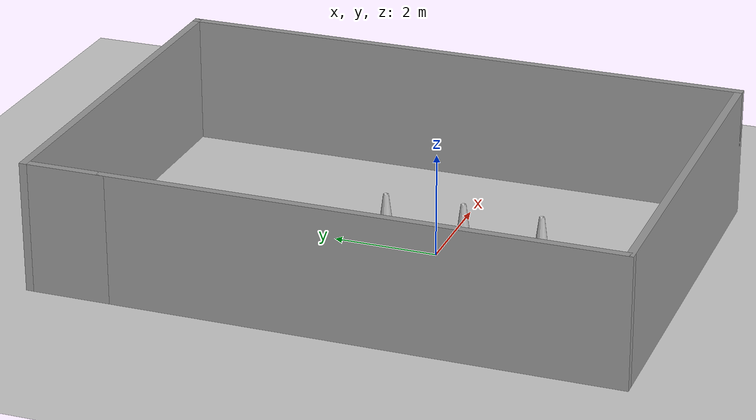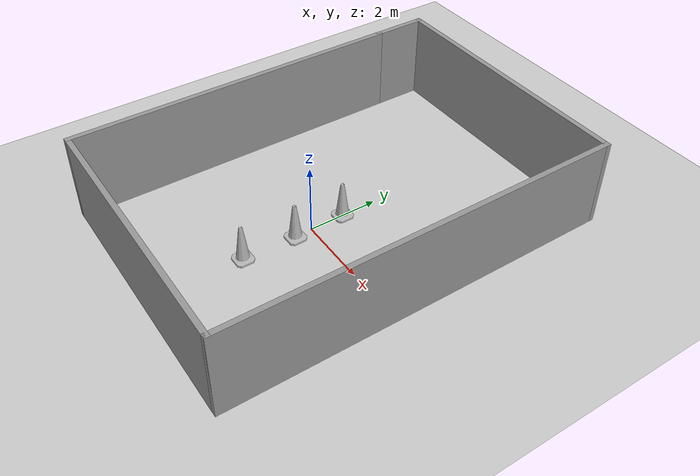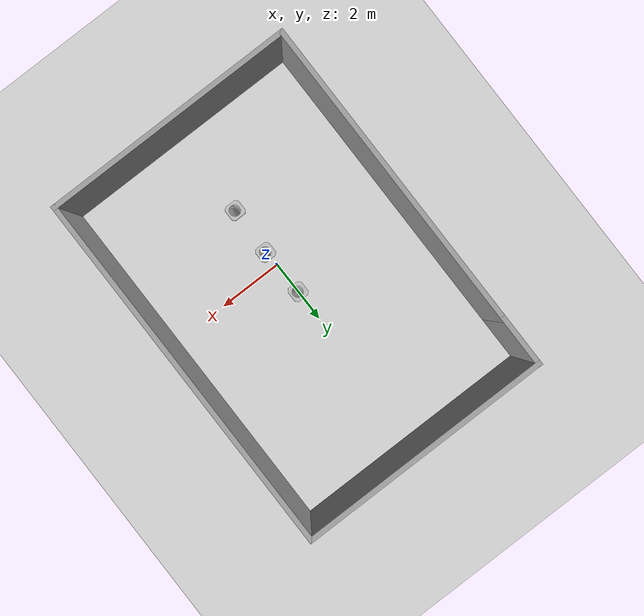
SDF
<sdf version="1.6">
 <world name="default">
  <light name="sun" type="directional">
   <pose>0 0 10 0 -0 0</pose>
   <diffuse>0.8 0.8 0.8 1</diffuse>
   <specular>0.1 0.1 0.1 1</specular>
   <attenuation>
    <range>1000</range>
    <constant>0.9</constant>
    <linear>0.01</linear>
    <quadratic>0.001</quadratic>
   </attenuation>
   <direction>-0.5 0.5 -1</direction>
  </light>
  <model name="ground_plane">
   <static>1</static>
   <link name="link">
    <collision name="collision">
     <geometry><plane><normal>0 0 1</normal><size>100 100</size></plane></geometry>
     <surface><friction><ode><mu>100</mu><mu2>50</mu2></ode></friction></surface>
    </collision>
    <visual name="visual">
     <cast_shadows>0</cast_shadows>
     <geometry><plane><normal>0 0 1</normal><size>100 100</size></plane></geometry>
     <material>
      <script><uri>file://media/materials/scripts/gazebo.material</uri><name>Gazebo/Grey</name></script>
     </material>
    </visual>
   </link>
  </model>
  <gravity>0 0 -9.8</gravity>
  <magnetic_field>6e-06 2.3e-05 -4.2e-05</magnetic_field>
  <atmosphere type="adiabatic"/>
  <physics name="default_physics" default="0" type="ode">
   <max_step_size>0.001</max_step_size>
   <real_time_factor>1</real_time_factor>
   <real_time_update_rate>1000</real_time_update_rate>
  </physics>
  <scene><ambient>0.4 0.4 0.4 1</ambient><background>0.7 0.7 0.7 1</background><shadows>1</shadows></scene>
  <spherical_coordinates>
   <surface_model>EARTH_WGS84</surface_model>
   <latitude_deg>0</latitude_deg>
   <longitude_deg>0</longitude_deg>
   <elevation>0</elevation>
   <heading_deg>0</heading_deg>
  </spherical_coordinates>
  <model name="Construction Cone">
   <static>1</static>
   <link name="link">
    <collision name="collision">
     <geometry>
      <mesh><scale>10 10 10</scale><uri>model://construction_cone/meshes/construction_cone.dae</uri></mesh>
     </geometry>
    </collision>
    <visual name="visual">
     <geometry>
      <mesh><scale>10 10 10</scale><uri>model://construction_cone/meshes/construction_cone.dae</uri></mesh>
     </geometry>
    </visual>
   </link>
   <pose>-0.002 0.988315 0 0 -0 0</pose>
  </model>
  <model name="Construction Cone_0">
   <static>1</static>
   <link name="link">
    <collision name="collision">
     <geometry>
      <mesh><scale>10 10 10</scale><uri>model://construction_cone/meshes/construction_cone.dae</uri></mesh>
     </geometry>
    </collision>
    <visual name="visual">
     <geometry>
      <mesh><scale>10 10 10</scale><uri>model://construction_cone/meshes/construction_cone.dae</uri></mesh>
     </geometry>
    </visual>
   </link>
   <pose>0.046648 -0.509019 0 0 -0 0</pose>
  </model>
  <model name="Construction Cone_1">
   <static>1</static>
   <link name="link">
    <collision name="collision">
     <geometry>
      <mesh><scale>10 10 10</scale><uri>model://construction_cone/meshes/construction_cone.dae</uri></mesh>
     </geometry>
    </collision>
    <visual name="visual">
     <geometry>
      <mesh><scale>10 10 10</scale><uri>model://construction_cone/meshes/construction_cone.dae</uri></mesh>
     </geometry>
    </visual>
   </link>
   <pose>-0.000189 -2.02921 0 0 -0 0</pose>
  </model>
  <model name="wall_0">
   <pose>-0.063523 0.833013 0 0 -0 0</pose>
   <link name="Wall_14">
    <collision name="Wall_14_Collision">
     <geometry><box><size>9.75 0.15 2.5</size></box></geometry>
     <pose>0 0 1.25 0 -0 0</pose>
    </collision>
    <visual name="Wall_14_Visual">
     <pose>0 0 1.25 0 -0 0</pose>
     <geometry><box><size>9.75 0.15 2.5</size></box></geometry>
     <material>
      <script><uri>file://media/materials/scripts/gazebo.material</uri><name>Gazebo/Grey</name></script>
      <ambient>1 1 1 1</ambient>
     </material>
    </visual>
    <pose>-3.8 -0.75 0 0 0 -1.5708</pose>
   </link>
   <link name="Wall_15">
    <collision name="Wall_15_Collision">
     <geometry><box><size>7.75 0.15 2.5</size></box></geometry>
     <pose>0 0 1.25 0 -0 0</pose>
    </collision>
    <visual name="Wall_15_Visual">
     <pose>0 0 1.25 0 -0 0</pose>
     <geometry><box><size>7.75 0.15 2.5</size></box></geometry>
     <material>
      <script><uri>file://media/materials/scripts/gazebo.material</uri><name>Gazebo/Grey</name></script>
      <ambient>1 1 1 1</ambient>
     </material>
    </visual>
    <pose>0 -5.55 0 0 -0 0</pose>
   </link>
   <link name="Wall_16">
    <collision name="Wall_16_Collision">
     <geometry><box><size>11.25 0.15 2.5</size></box></geometry>
     <pose>0 0 1.25 0 -0 0</pose>
    </collision>
    <visual name="Wall_16_Visual">
     <pose>0 0 1.25 0 -0 0</pose>
     <geometry><box><size>11.25 0.15 2.5</size></box></geometry>
     <material>
      <script><uri>file://media/materials/scripts/gazebo.material</uri><name>Gazebo/Grey</name></script>
      <ambient>1 1 1 1</ambient>
     </material>
    </visual>
    <pose>3.8 0 0 0 -0 1.5708</pose>
   </link>
   <link name="Wall_17">
    <collision name="Wall_17_Collision">
     <geometry><box><size>7.75 0.15 2.5</size></box></geometry>
     <pose>0 0 1.25 0 -0 0</pose>
    </collision>
    <visual name="Wall_17_Visual">
     <pose>0 0 1.25 0 -0 0</pose>
     <geometry><box><size>7.75 0.15 2.5</size></box></geometry>
     <material>
      <script><uri>file://media/materials/scripts/gazebo.material</uri><name>Gazebo/Grey</name></script>
      <ambient>1 1 1 1</ambient>
     </material>
    </visual>
    <pose>0 5.55 0 0 -0 3.14159</pose>
   </link>
   <link name="Wall_18">
    <collision name="Wall_18_Collision">
     <geometry><box><size>1.65 0.15 2.5</size></box></geometry>
     <pose>0 0 1.25 0 -0 0</pose>
    </collision>
    <visual name="Wall_18_Visual">
     <pose>0 0 1.25 0 -0 0</pose>
     <geometry><box><size>1.65 0.15 2.5</size></box></geometry>
     <material>
      <script><uri>file://media/materials/scripts/gazebo.material</uri><name>Gazebo/Grey</name></script>
      <ambient>1 1 1 1</ambient>
     </material>
    </visual>
    <pose>-3.8 4.8 0 0 0 -1.5708</pose>
   </link>
   <static>1</static>
  </model>
 </world>
</sdf>
